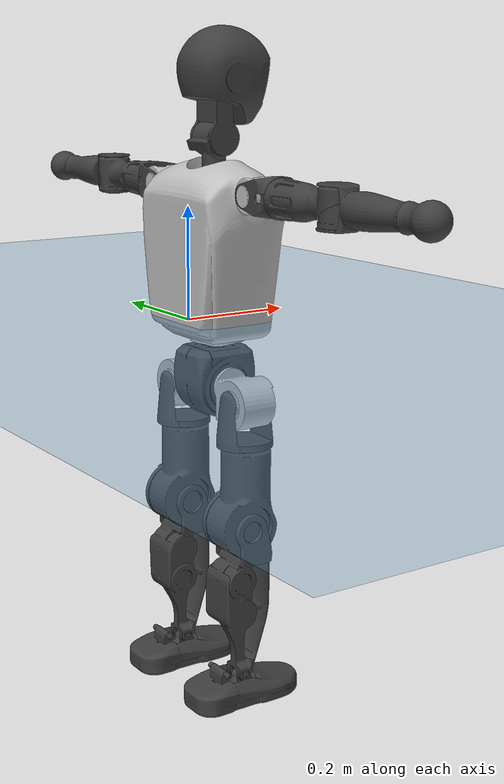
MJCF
<mujoco model="T1">
  <compiler angle="radian" assetdir="assets" balanceinertia="true" inertiafromgeom="false"/>

  <option timestep="0.005" density="1.2" viscosity="2e-05"/>

  <size nkey="1"/>

  <visual>
    <quality shadowsize="8192"/>
    <map shadowclip="0.5"/>
  </visual>

  <default>
    <default class="/">
      <joint armature="0.01" damping="0.01" frictionloss="0.1"/>
      <geom contype="0" conaffinity="0" group="1" solref="-1000 -80"/>
      <site size="0.01 0.005 0.005" group="5"/>
      <general forcelimited="true" biastype="affine" gainprm="25" biasprm="0 -25 -0.6"/>
      <default class="t1">
        <geom rgba="0.25 0.25 0.25 1"/>
        <default class="visual">
          <geom type="mesh" group="2"/>
        </default>
        <default class="collision">
          <geom group="3"/>
        </default>
        <default class="foot">
          <geom size="0.1115 0.05 0.015" type="box" condim="6" group="4" priority="1" solimp="0.015 1 0.015"/>
        </default>
        <default class="reward_collision_sphere">
          <geom group="5" rgba="1 0 0 1"/>
        </default>
      </default>
    </default>
  </default>

  <asset>
    <texture type="skybox" colorspace="auto" name="//unnamed_texture_0" builtin="gradient" rgb1="0.95 0.95 0.95" rgb2="0.95 0.95 0.95" width="100" height="600"/>
    <texture type="2d" colorspace="auto" name="texplane" builtin="checker" rgb1="0.345 0.575 0.748" rgb2="0.345 0.575 0.748" markrgb="1 1 1" width="512" height="512"/>
    <material name="MatPlane" class="/" texture="texplane" texuniform="true" texrepeat="2 2" specular="0.9"/>
    <mesh name="Trunk" class="/" file="Trunk.stl"/>
    <mesh name="H1" class="/" file="H1.stl"/>
    <mesh name="H2" class="/" file="H2.stl"/>
    <mesh name="AL1" class="/" file="AL1.stl"/>
    <mesh name="AL2" class="/" file="AL2.stl"/>
    <mesh name="AL3" class="/" file="AL3.stl"/>
    <mesh name="left_hand_link" class="/" file="left_hand_link.stl"/>
    <mesh name="AR1" class="/" file="AR1.stl"/>
    <mesh name="AR2" class="/" file="AR2.stl"/>
    <mesh name="AR3" class="/" file="AR3.stl"/>
    <mesh name="right_hand_link" class="/" file="right_hand_link.stl"/>
    <mesh name="Waist" class="/" file="Waist.stl"/>
    <mesh name="Hip_Pitch_Left" class="/" file="Hip_Pitch_Left.stl"/>
    <mesh name="Hip_Roll_Left" class="/" file="Hip_Roll_Left.stl"/>
    <mesh name="Hip_Yaw_Left" class="/" file="Hip_Yaw_Left.stl"/>
    <mesh name="Shank_Left" class="/" file="Shank_Left.stl"/>
    <mesh name="Ankle_Cross_Left" class="/" file="Ankle_Cross_Left.stl"/>
    <mesh name="left_foot_link" class="/" file="left_foot_link.stl"/>
    <mesh name="Hip_Pitch_Right" class="/" file="Hip_Pitch_Right.stl"/>
    <mesh name="Hip_Roll_Right" class="/" file="Hip_Roll_Right.stl"/>
    <mesh name="Hip_Yaw_Right" class="/" file="Hip_Yaw_Right.stl"/>
    <mesh name="Shank_Right" class="/" file="Shank_Right.stl"/>
    <mesh name="Ankle_Cross_Right" class="/" file="Ankle_Cross_Right.stl"/>
    <mesh name="right_foot_link" class="/" file="right_foot_link.stl"/>
  </asset>

  <worldbody>
    <geom name="floor" class="/" size="100 100 0.125" type="plane" group="0" material="MatPlane"/>
    <light name="toplight_shadow" class="/" pos="0 0 5" dir="0.0990148 0.0990148 -0.990148" type="directional" ambient="0.04 0.04 0.04" diffuse="0.55 0.55 0.55" specular="0.12 0.12 0.12"/>
    <light name="toplight_fill" class="/" pos="0 0 5" dir="0.0990148 0.0990148 -0.990148" type="directional" castshadow="false" ambient="0.04 0.04 0.04" diffuse="0.3 0.3 0.3" specular="0.08 0.08 0.08"/>
    <body name="trunk" childclass="t1" pos="7.12615e-05 0.000778513 -0.000291219" quat="1 0.000243544 -7.69678e-05 -0.000249269">
      <inertial pos="0.0470471 -8.67034e-05 0.108696" quat="0.999927 -0.00190097 -0.0118946 -0.000382332" mass="10.2802" diaginertia="0.0451436 0.0643724 0.0670854"/>
      <joint name="//unnamed_joint_0" type="free" armature="0" damping="0" frictionloss="0"/>
      <geom name="//unnamed_geom_1" class="visual" rgba="0.76 0.76 0.76 1" mesh="Trunk"/>
      <geom name="//unnamed_geom_2" class="collision" size="0.0716245 0.0954993 0.143249" pos="0.0519174 0 0.124371" type="box"/>
      <geom name="//unnamed_geom_3" class="reward_collision_sphere" size="0.109824" pos="0.0519174 0 0.103642"/>
      <geom name="//unnamed_geom_4" class="reward_collision_sphere" size="0.0143249" pos="0.0519174 0.0818776 0"/>
      <geom name="//unnamed_geom_5" class="reward_collision_sphere" size="0.0143249" pos="0.0519174 -0.0818776 0"/>
      <geom name="//unnamed_geom_6" class="reward_collision_sphere" size="0.0143249" pos="0.0519174 0.103069 0.186556"/>
      <geom name="//unnamed_geom_7" class="reward_collision_sphere" size="0.0143249" pos="0.0519174 -0.103069 0.186556"/>
      <site name="imu" pos="-0.00391981 0.000209875 0.0040527" size="0.00954993"/>
      <camera name="track" pos="0 -1.92653 0" quat="0.707107 0.707107 0 0" mode="trackcom"/>
      <camera name="ego_camera" pos="0.105565 0 0.435298" quat="-0.5 -0.5 0.5 0.5"/>
      <body name="H1" pos="0.0538993 -0.000360904 0.251271" quat="1 -1.34343e-05 -2.79286e-06 -2.10839e-05">
        <inertial pos="-0.000942511 -0.00138514 0.0594853" quat="0.764119 -0.0139885 0.00223291 0.64492" mass="0.387465" diaginertia="0.00011871 0.000186248 0.000178963"/>
        <joint name="AAHead_yaw" pos="0 0 0" axis="-0.000203477 -0.00246219 0.999997" range="-1.58665 1.56587" armature="0.00964423" damping="0.00957809" frictionloss="0.0955195"/>
        <geom name="//unnamed_geom_8" class="visual" mesh="H1"/>
        <body name="H2" pos="0.000396218 -0.00125184 0.0636879" quat="1 0.000112699 -3.32763e-05 -7.00397e-05">
          <inertial pos="0.00554429 0.00103131 0.101531" quat="0.98819 0.106602 -0.0767755 -0.0788813" mass="0.543448" diaginertia="0.000984287 0.00157583 0.00205348"/>
          <joint name="Head_pitch" pos="0 0 0" axis="-0.000196875 -1 -0.00025619" range="-1.22412 0.341912" armature="0.00912963" damping="0.00640353" frictionloss="0.0964229"/>
          <geom name="//unnamed_geom_9" class="visual" mesh="H2"/>
          <geom name="//unnamed_geom_10" class="collision" size="0.0763994" pos="0.00865289 0 0.114007"/>
          <geom name="//unnamed_geom_11" class="reward_collision_sphere" size="0.0859494" pos="0.0173058 0 0.103642"/>
        </body>
      </body>
      <body name="AL1" pos="0.0510682 0.102903 0.226939" quat="1 -8.89677e-05 0.00038564 -0.000311331">
        <inertial pos="0.000284031 0.0429061 0.000221222" quat="0.504195 0.495712 -0.504317 0.495703" mass="0.466622" diaginertia="0.000669304 0.00107722 0.00035496"/>
        <joint name="Left_Shoulder_Pitch" pos="0 0 0" axis="-0.000968859 0.999998 -0.0016398" range="-3.29134 1.22964" armature="0.00949678" damping="0.00440373" frictionloss="0.0915738"/>
        <geom name="//unnamed_geom_12" class="visual" rgba="0.76 0.76 0.76 1" mesh="AL1"/>
        <body name="AL2" pos="0.00105087 0.045679 0.000154757" quat="1 5.42602e-05 5.33322e-05 -1.41504e-05">
          <inertial pos="0.00358612 0.0365026 0.000474007" quat="0.487476 0.513124 -0.486916 0.511843" mass="0.138034" diaginertia="0.00019207 0.000284966 0.000211068"/>
          <joint name="Left_Shoulder_Roll" pos="0 0 0" axis="-1 -0.000225254 0.000352955" range="-1.58658 1.73631" armature="0.00974261" damping="0.00416947" frictionloss="0.0957461"/>
          <geom name="//unnamed_geom_13" class="visual" mesh="AL2"/>
          <body name="AL3" pos="0.00064883 0.058574 6.58577e-05" quat="1 -8.33093e-06 -2.75631e-05 -6.76414e-05">
            <inertial pos="-0.00046486 0.0819242 -0.000263304" quat="0.706596 0.707604 -0.00358365 0.00243694" mass="0.893358" diaginertia="0.00626088 0.0106813 0.000754576"/>
            <joint name="Left_Elbow_Pitch" pos="0 0 0" axis="0.000345824 -0.999995 0.00321872" stiffness="0.00236137" range="-2.284 2.27791" armature="0.0100139" damping="0.00834545" frictionloss="0.0961759"/>
            <geom name="//unnamed_geom_14" class="visual" mesh="AL3"/>
            <geom name="//unnamed_geom_15" class="collision" size="0.0286498 0.0716245" pos="0 0.0481633 0" quat="0.707105 0.707108 0 0" type="cylinder"/>
            <geom name="//unnamed_geom_16" class="reward_collision_sphere" size="0.0343797"/>
            <body name="left_hand_link" pos="-4.85577e-05 0.142664 0.00165481" quat="1 0.000113394 5.12784e-05 0.000133687">
              <inertial pos="-0.000481086 0.105097 0.000643099" quat="0.708482 0.705726 -0.000921424 -0.00198677" mass="0.283843" diaginertia="0.00395664 0.00669617 0.000256547"/>
              <joint name="Left_Elbow_Yaw" pos="0 0 0" axis="-0.00255777 0.00174361 0.999995" range="-2.44081 -0.0112302" armature="0.00941153" damping="0.00903106" frictionloss="0.096078"/>
              <geom name="//unnamed_geom_17" class="visual" mesh="left_hand_link"/>
              <geom name="//unnamed_geom_18" class="collision" size="0.0286498 0.0835619" pos="0 0.125225 0" quat="0.707105 0.707108 0 0" type="cylinder"/>
              <geom name="//unnamed_geom_19" class="reward_collision_sphere" size="0.0477496"/>
              <geom name="//unnamed_geom_20" class="reward_collision_sphere" size="0.0334248" pos="0 0.105959 0"/>
              <geom name="//unnamed_geom_21" class="reward_collision_sphere" size="0.0334248" pos="0 0.207102 0"/>
            </body>
          </body>
        </body>
      </body>
      <body name="AR1" pos="0.0490169 -0.101327 0.227409" quat="1 3.86e-06 0.000475473 -8.98568e-05">
        <inertial pos="-0.000190367 -0.0445859 -0.000517542" quat="0.504527 0.492189 -0.506951 0.496189" mass="0.464006" diaginertia="0.000671523 0.00108082 0.000349684"/>
        <joint name="Right_Shoulder_Pitch" pos="0 0 0" axis="0.000376553 -0.999999 0.00137596" range="-1.22223 3.32559" armature="0.00942712" damping="0.00667643" frictionloss="0.0987323"/>
        <geom name="//unnamed_geom_22" class="visual" rgba="0.76 0.76 0.76 1" mesh="AR1"/>
        <body name="AR2" pos="-6.66404e-05 -0.0453237 0.000831686" quat="1 0.000160097 2.86162e-05 -6.44781e-05">
          <inertial pos="0.00410483 -0.0368895 2.14515e-05" quat="0.511294 0.48948 -0.512812 0.485811" mass="0.139203" diaginertia="0.000194376 0.000286618 0.000209941"/>
          <joint name="Right_Shoulder_Roll" pos="0 0 0" axis="-0.999977 -0.00626631 0.00270806" stiffness="0.000193571" range="-1.74419 1.56851" armature="0.00965599" damping="0.00463419" frictionloss="0.100008"/>
          <geom name="//unnamed_geom_23" class="visual" mesh="AR2"/>
          <body name="AR3" pos="-0.00114668 -0.0586244 -0.00139106" quat="1 5.98696e-06 -1.86386e-05 -3.77137e-06">
            <inertial pos="-0.000617177 -0.0823401 0.000427155" quat="0.707639 0.706574 0.000437931 0.000892021" mass="0.887845" diaginertia="0.00623246 0.0105476 0.000740389"/>
            <joint name="Right_Elbow_Pitch" pos="0 0 0" axis="-0.000493414 0.999999 -0.00112573" range="-2.26926 2.28611" armature="0.00949252" damping="0.00941998" frictionloss="0.0912566"/>
            <geom name="//unnamed_geom_24" class="visual" mesh="AR3"/>
            <geom name="//unnamed_geom_25" class="collision" size="0.0286498 0.0716245" pos="0 -0.0481633 0" quat="0.707105 0.707108 0 0" type="cylinder"/>
            <geom name="//unnamed_geom_26" class="reward_collision_sphere" size="0.0343797"/>
            <body name="right_hand_link" pos="-0.000241254 -0.141376 -0.000182897" quat="1 -0.000123399 0.000259755 0.000168006">
              <inertial pos="-0.000434971 -0.104794 0.00122535" quat="0.706202 0.70801 0.000211807 -1.93743e-05" mass="0.286042" diaginertia="0.00399823 0.00677897 0.000259111"/>
              <joint name="Right_Elbow_Yaw" pos="0 0 0" axis="-0.00307906 0.00525072 0.999981" range="0.00448444 2.4195" armature="0.00946369" damping="0.00355992" frictionloss="0.0919681"/>
              <geom name="//unnamed_geom_27" class="visual" mesh="right_hand_link"/>
              <geom name="//unnamed_geom_28" class="collision" size="0.0286498 0.0835619" pos="0 -0.125225 0" quat="0.707105 0.707108 0 0" type="cylinder"/>
              <geom name="//unnamed_geom_29" class="reward_collision_sphere" size="0.0477496"/>
              <geom name="//unnamed_geom_30" class="reward_collision_sphere" size="0.0334248" pos="0 -0.105959 0"/>
              <geom name="//unnamed_geom_31" class="reward_collision_sphere" size="0.0334248" pos="0 -0.207102 0"/>
            </body>
          </body>
        </body>
      </body>
      <body name="Waist" pos="0.0546786 -0.000645457 -0.118868" quat="1 2.36984e-05 8.43209e-06 3.53818e-05">
        <inertial pos="0.00189449 -0.000868535 0.00808476" quat="0.983724 0.000857419 -0.179668 0.00256768" mass="2.22516" diaginertia="0.00258376 0.00435971 0.00561282"/>
        <joint name="Waist" pos="0 0 0" axis="0.000516067 0.000562215 1" stiffness="0.00183573" range="-1.56191 1.57194" armature="0.00946343" damping="0.0090225" frictionloss="0.0945298"/>
        <geom name="//unnamed_geom_32" class="visual" mesh="Waist"/>
        <body name="Hip_Pitch_Left" pos="0.00051253 0.100938 -0.000125278" quat="1 -4.28648e-05 -8.28426e-05 -0.000601776">
          <inertial pos="0.000870858 -0.00646511 -0.0185506" quat="0.974913 0.222086 0.0149311 -0.000405184" mass="0.878861" diaginertia="0.000875885 0.00120878 0.00148313"/>
          <joint name="Left_Hip_Pitch" pos="0 0 0" axis="-0.0067269 0.999975 -0.00204162" range="-1.80503 1.58088" armature="0.0091885" damping="0.00976964" frictionloss="0.0958695"/>
          <geom name="//unnamed_geom_33" class="visual" rgba="0.76 0.76 0.76 1" mesh="Hip_Pitch_Left"/>
          <body name="Hip_Roll_Left" pos="0.00060417 0.000972997 -0.0214546" quat="1 -0.000256033 3.89737e-05 -0.000547509">
            <inertial pos="0.00165149 2.17784e-05 -0.0553389" quat="0.706967 -0.00578424 -0.00625732 0.707195" mass="0.330486" diaginertia="0.000839031 0.00124353 0.000610218"/>
            <joint name="Left_Hip_Roll" pos="0 0 0" axis="-1 0.000622804 -0.000737297" range="-1.57907 0.19869" armature="0.00990693" damping="0.00717335" frictionloss="0.0931673"/>
            <geom name="//unnamed_geom_34" class="visual" mesh="Hip_Roll_Left"/>
            <geom name="//unnamed_geom_35" class="reward_collision_sphere" size="0.0525246"/>
            <body name="Hip_Yaw_Left" pos="0.000636717 2.6165e-05 -0.084803" quat="1 8.55485e-06 -7.43068e-05 -2.96406e-05">
              <inertial pos="-0.00637883 0.000148897 -0.092761" quat="0.69681 -0.0356972 -0.0325433 0.715627" mass="1.89679" diaginertia="0.0123948 0.020882 0.00309633"/>
              <joint name="Left_Hip_Yaw" pos="0 0 0" axis="-0.000803623 -0.000409128 -1" range="-0.99101 1.00403" armature="0.00952478" damping="0.00544181" frictionloss="0.0946308"/>
              <geom name="//unnamed_geom_36" class="visual" mesh="Hip_Yaw_Left"/>
              <geom name="//unnamed_geom_37" class="collision" size="0.0477496 0.0763994" type="cylinder"/>
              <body name="Shank_Left" pos="-0.0109339 0.000351048 -0.139201" quat="1 -8.01043e-05 6.16406e-05 9.66009e-05">
                <inertial pos="-0.00492946 0.000972792 -0.128716" quat="0.997491 0.00147595 -0.0226321 0.0670693" mass="1.4738" diaginertia="0.0166559 0.0283018 0.00219337"/>
                <joint name="Left_Knee_Pitch" pos="0 0 0" axis="0.0010768 0.999998 -0.00152223" range="-0.000887092 2.35685" armature="0.0095359" damping="0.0125699" frictionloss="0.0934798"/>
                <geom name="//unnamed_geom_38" class="visual" mesh="Shank_Left"/>
                <geom name="//unnamed_geom_39" class="collision" size="0.0477496 0.0716245" pos="0 0 -0.124371" type="cylinder"/>
                <geom name="//unnamed_geom_40" class="reward_collision_sphere" size="0.0620745"/>
                <body name="Ankle_Cross_Left" pos="-0.00113762 -0.00067772 -0.289829" quat="1 -6.79506e-05 4.42293e-05 -5.82908e-05">
                  <inertial pos="-0.00237402 -0.000656172 -0.008394" quat="0.443572 0.549185 0.553528 0.441868" mass="0.0637453" diaginertia="1.4065e-05 2.12596e-05 1.34551e-05"/>
                  <joint name="Left_Ankle_Pitch" pos="0 0 0" axis="-0.00137014 0.999997 -0.00216586" range="-0.863799 0.351759" armature="0.00973133" damping="0.0103785" frictionloss="0.0945609"/>
                  <geom name="//unnamed_geom_41" class="visual" mesh="Ankle_Cross_Left"/>
                  <body name="left_foot_link" pos="-7.59065e-05 -0.000291578 -0.0126269" quat="1 -2.67845e-05 0.000118959 0.000120418">
                    <inertial pos="-0.000251256 0.000390039 -0.00858412" quat="-0.000467505 0.619189 -0.000469445 0.785242" mass="0.591941" diaginertia="0.00129342 0.0019778 0.00261003"/>
                    <joint name="Left_Ankle_Roll" pos="0 0 0" axis="-0.999996 0.00266303 -0.000110378" range="-0.446096 0.442198" armature="0.00959457" damping="0.0151518" frictionloss="0.0945176"/>
                    <geom name="//unnamed_geom_42" class="visual" mesh="left_foot_link"/>
                    <geom name="left_foot" class="foot" size="0.108443 0.0477717 0.0147453" pos="0.00865289 0 -0.0155464"/>
                    <geom name="//unnamed_geom_44" class="reward_collision_sphere" size="0.0496596" pos="0.00865289 0 -0.0155464"/>
                    <geom name="//unnamed_geom_45" class="reward_collision_sphere" size="0.0286498" pos="0.0822025 -0.0221551 -0.0155464"/>
                    <geom name="//unnamed_geom_46" class="reward_collision_sphere" size="0.0286498" pos="-0.0605702 -0.0221551 -0.0155464"/>
                    <site name="left_foot" class="foot" pos="0.00865289 0 -0.0155464" size="0.00954993"/>
                  </body>
                </body>
              </body>
            </body>
          </body>
        </body>
        <body name="Hip_Pitch_Right" pos="-0.000155921 -0.102262 0.00073948" quat="1 0.000244297 -0.000516837 0.000500342">
          <inertial pos="3.99938e-05 0.00614063 -0.0185102" quat="0.97352 -0.227747 0.0188971 -0.00567775" mass="0.876256" diaginertia="0.000873272 0.00120474 0.00148912"/>
          <joint name="Right_Hip_Pitch" pos="0 0 0" axis="-0.00101838 -0.999993 0.00348365" stiffness="0.00156076" range="-1.55522 1.79407" armature="0.0098965" damping="0.00617203" frictionloss="0.0980567"/>
          <geom name="//unnamed_geom_47" class="visual" rgba="0.76 0.76 0.76 1" mesh="Hip_Pitch_Right"/>
          <body name="Hip_Roll_Right" pos="0.000100866 0.00113714 -0.0197812" quat="1 -0.000242778 7.90915e-05 0.000275186">
            <inertial pos="0.000936615 0.000539347 -0.0561033" quat="0.706309 -0.00404074 -0.0041949 0.70788" mass="0.331526" diaginertia="0.000832927 0.00125897 0.000616403"/>
            <joint name="Right_Hip_Roll" pos="0 0 0" axis="-0.999991 0.0041041 0.00135924" range="-0.196302 1.56863" armature="0.00925208" damping="0.00865713" frictionloss="0.0960001"/>
            <geom name="//unnamed_geom_48" class="visual" mesh="Hip_Roll_Right"/>
            <geom name="//unnamed_geom_49" class="reward_collision_sphere" size="0.0525246"/>
            <body name="Hip_Yaw_Right" pos="0.000463249 0.000969259 -0.0851251" quat="1 -1.20803e-05 0.000153382 2.59018e-05">
              <inertial pos="-0.00677693 0.000416565 -0.0921361" quat="0.714473 -0.0315852 -0.0333475 0.698154" mass="1.85999" diaginertia="0.0124171 0.0208831 0.003108"/>
              <joint name="Right_Hip_Yaw" pos="0 0 0" axis="0.000268314 -0.00115562 -0.999999" range="-1.01505 1.01173" armature="0.00907901" damping="0.0064871" frictionloss="0.0967254"/>
              <geom name="//unnamed_geom_50" class="visual" mesh="Hip_Yaw_Right"/>
              <geom name="//unnamed_geom_51" class="collision" size="0.0477496 0.0763994" type="cylinder"/>
              <body name="Shank_Right" pos="-0.0130829 -0.000350894 -0.139049" quat="1 7.18283e-05 4.08671e-05 0.000119304">
                <inertial pos="-0.00526804 -0.000920224 -0.126647" quat="0.999179 -0.00372271 -0.0254081 -0.0313241" mass="1.57031" diaginertia="0.0172624 0.0291051 0.00238136"/>
                <joint name="Right_Knee_Pitch" pos="0 0 0" axis="-0.00119303 -0.999974 0.00707013" range="-2.34937 0.00433461" armature="0.00939435" damping="0.00478256" frictionloss="0.0966762"/>
                <geom name="//unnamed_geom_52" class="visual" mesh="Shank_Right"/>
                <geom name="//unnamed_geom_53" class="collision" size="0.0477496 0.0716245" pos="0 0 -0.124371" type="cylinder"/>
                <geom name="//unnamed_geom_54" class="reward_collision_sphere" size="0.0620745"/>
                <body name="Ankle_Cross_Right" pos="-0.000910902 -0.000508823 -0.289829" quat="1 -0.000145455 -0.000251624 0.00036731">
                  <inertial pos="-0.00297705 0.000295083 -0.00889306" quat="0.446308 0.551113 0.548242 0.443301" mass="0.0633754" diaginertia="1.41356e-05 2.13039e-05 1.36291e-05"/>
                  <joint name="Right_Ankle_Pitch" pos="0 0 0" axis="-0.00093767 -0.999999 0.000657074" range="-0.344615 0.862988" armature="0.00942654" damping="0.00642499" frictionloss="0.0942299"/>
                  <geom name="//unnamed_geom_55" class="visual" mesh="Ankle_Cross_Right"/>
                  <body name="right_foot_link" pos="-0.000345467 -0.00122763 -0.0116678" quat="1 4.97483e-05 9.32549e-05 0.000107338">
                    <inertial pos="0.000160914 7.47186e-05 -0.00906281" quat="-0.00148112 0.620834 0.00150271 0.783939" mass="0.597278" diaginertia="0.00130636 0.00197895 0.00264539"/>
                    <joint name="Right_Ankle_Roll" pos="0 0 0" axis="-0.999989 -0.0013909 -0.00445982" range="-0.418477 0.440529" armature="0.00945827" damping="0.00878569" frictionloss="0.0992838"/>
                    <geom name="//unnamed_geom_56" class="visual" mesh="right_foot_link"/>
                    <geom name="right_foot" class="foot" size="0.101749 0.048671 0.0148884" pos="0.00865289 0 -0.0155464"/>
                    <geom name="//unnamed_geom_58" class="reward_collision_sphere" size="0.0381997"/>
                    <geom name="//unnamed_geom_59" class="reward_collision_sphere" size="0.0286498" pos="0.00865289 0 -0.0155464"/>
                    <geom name="//unnamed_geom_60" class="reward_collision_sphere" size="0.0286498" pos="0.0822025 0.0221551 -0.0155464"/>
                    <geom name="//unnamed_geom_61" class="reward_collision_sphere" size="0.0286498" pos="-0.0605702 0.0221551 -0.0155464"/>
                    <site name="right_foot" class="foot" pos="0.00865289 0 -0.0155464" size="0.00954993"/>
                  </body>
                </body>
              </body>
            </body>
          </body>
        </body>
      </body>
    </body>
  </worldbody>

  <contact>
    <pair class="/" geom1="floor" geom2="left_foot" name="//unnamed_contact_0"/>
    <pair class="/" geom1="floor" geom2="right_foot" name="//unnamed_contact_1"/>
  </contact>

  <actuator>
    <general name="AAHead_yaw" class="/" joint="AAHead_yaw" forcerange="-6.90917 6.90917" gainprm="23.434" biasprm="0 -23.434 -0.554714"/>
    <general name="Head_pitch" class="/" joint="Head_pitch" forcerange="-6.47636 6.47636" gainprm="23.434" biasprm="0 -23.434 -0.554714"/>
    <general name="Left_Shoulder_Pitch" class="/" joint="Left_Shoulder_Pitch" forcerange="-16.753 16.753" gainprm="23.434" biasprm="0 -23.434 -0.554714"/>
    <general name="Left_Shoulder_Roll" class="/" joint="Left_Shoulder_Roll" forcerange="-16.8859 16.8859" gainprm="23.434" biasprm="0 -23.434 -0.554714"/>
    <general name="Left_Elbow_Pitch" class="/" joint="Left_Elbow_Pitch" forcerange="-17.3431 17.3431" gainprm="23.434" biasprm="0 -23.434 -0.554714"/>
    <general name="Left_Elbow_Yaw" class="/" joint="Left_Elbow_Yaw" forcerange="-17.2612 17.2612" gainprm="23.434" biasprm="0 -23.434 -0.554714"/>
    <general name="Right_Shoulder_Pitch" class="/" joint="Right_Shoulder_Pitch" forcerange="-17.3504 17.3504" gainprm="23.434" biasprm="0 -23.434 -0.554714"/>
    <general name="Right_Shoulder_Roll" class="/" joint="Right_Shoulder_Roll" forcerange="-17.1868 17.1868" gainprm="23.434" biasprm="0 -23.434 -0.554714"/>
    <general name="Right_Elbow_Pitch" class="/" joint="Right_Elbow_Pitch" forcerange="-17.5195 17.5195" gainprm="23.434" biasprm="0 -23.434 -0.554714"/>
    <general name="Right_Elbow_Yaw" class="/" joint="Right_Elbow_Yaw" forcerange="-16.8263 16.8263" gainprm="23.434" biasprm="0 -23.434 -0.554714"/>
    <general name="Waist" class="/" joint="Waist" forcerange="-29.0828 29.0828" gainprm="23.434" biasprm="0 -23.434 -0.554714"/>
    <general name="Left_Hip_Pitch" class="/" joint="Left_Hip_Pitch" forcerange="-42.7856 42.7856" gainprm="23.434" biasprm="0 -23.434 -0.554714"/>
    <general name="Left_Hip_Roll" class="/" joint="Left_Hip_Roll" forcerange="-28.6397 28.6397" gainprm="23.434" biasprm="0 -23.434 -0.554714"/>
    <general name="Left_Hip_Yaw" class="/" joint="Left_Hip_Yaw" forcerange="-28.1544 28.1544" gainprm="23.434" biasprm="0 -23.434 -0.554714"/>
    <general name="Left_Knee_Pitch" class="/" joint="Left_Knee_Pitch" forcerange="-57.6408 57.6408" gainprm="23.434" biasprm="0 -23.434 -0.554714"/>
    <general name="Left_Ankle_Pitch" class="/" joint="Left_Ankle_Pitch" forcerange="-19.6167 19.6167" gainprm="23.434" biasprm="0 -23.434 -0.554714"/>
    <general name="Left_Ankle_Roll" class="/" joint="Left_Ankle_Roll" forcerange="-13.7777 13.7777" gainprm="23.434" biasprm="0 -23.434 -0.554714"/>
    <general name="Right_Hip_Pitch" class="/" joint="Right_Hip_Pitch" forcerange="-42.9906 42.9906" gainprm="23.434" biasprm="0 -23.434 -0.554714"/>
    <general name="Right_Hip_Roll" class="/" joint="Right_Hip_Roll" forcerange="-29.1014 29.1014" gainprm="23.434" biasprm="0 -23.434 -0.554714"/>
    <general name="Right_Hip_Yaw" class="/" joint="Right_Hip_Yaw" forcerange="-29.0625 29.0625" gainprm="23.434" biasprm="0 -23.434 -0.554714"/>
    <general name="Right_Knee_Pitch" class="/" joint="Right_Knee_Pitch" forcerange="-57.6982 57.6982" gainprm="23.434" biasprm="0 -23.434 -0.554714"/>
    <general name="Right_Ankle_Pitch" class="/" joint="Right_Ankle_Pitch" forcerange="-19.2227 19.2227" gainprm="23.434" biasprm="0 -23.434 -0.554714"/>
    <general name="Right_Ankle_Roll" class="/" joint="Right_Ankle_Roll" forcerange="-14.3199 14.3199" gainprm="23.434" biasprm="0 -23.434 -0.554714"/>
  </actuator>

  <sensor>
    <gyro site="imu" name="imu_angular_velocity"/>
    <velocimeter site="imu" name="imu_linear_velocity"/>
    <framelinvel objtype="site" objname="left_foot" name="left_foot_global_linear_velocity"/>
    <framelinvel objtype="site" objname="right_foot" name="right_foot_global_linear_velocity"/>
  </sensor>

  <keyframe>
    <key name="home" qpos="0 0 0.6385 1 0 0 0 0 0 0 1.4 0 -0.4 0 -1.4 0 0.4 0 -0.4 0 0 0.8 -0.4 0 0.4 0 0 -0.8 0.4 0"/>
  </keyframe>
</mujoco>
